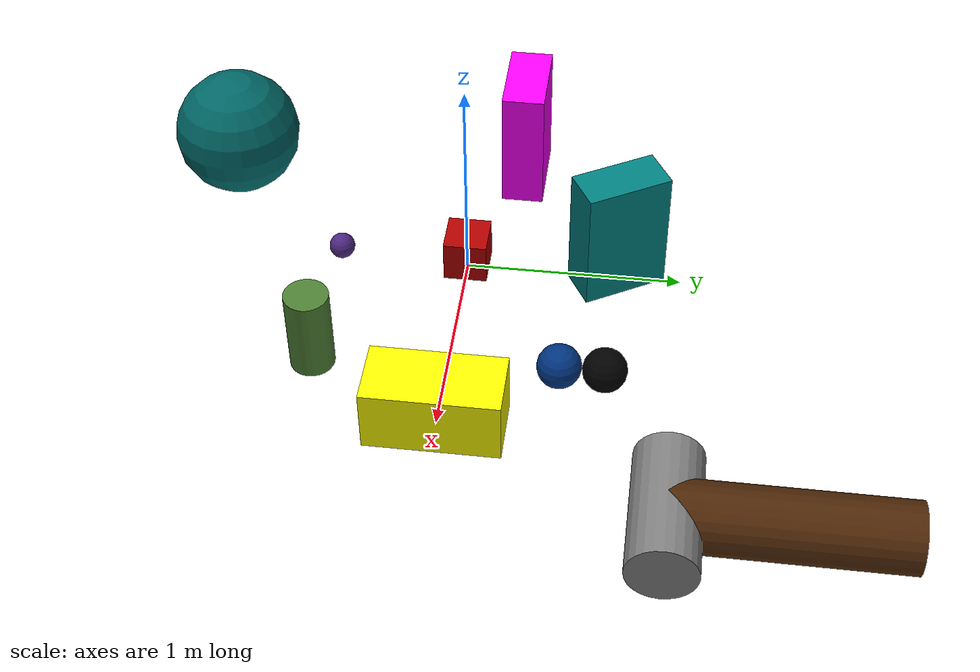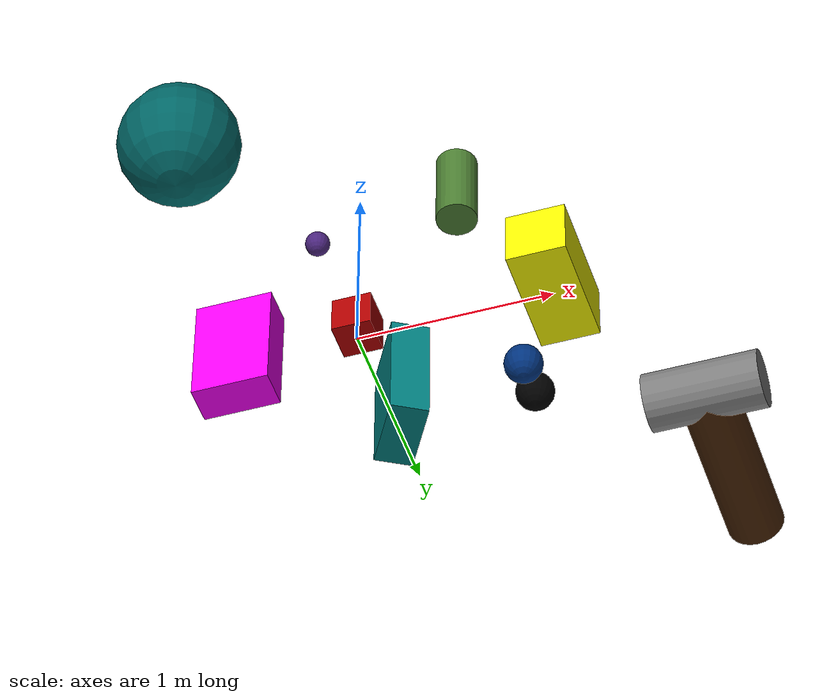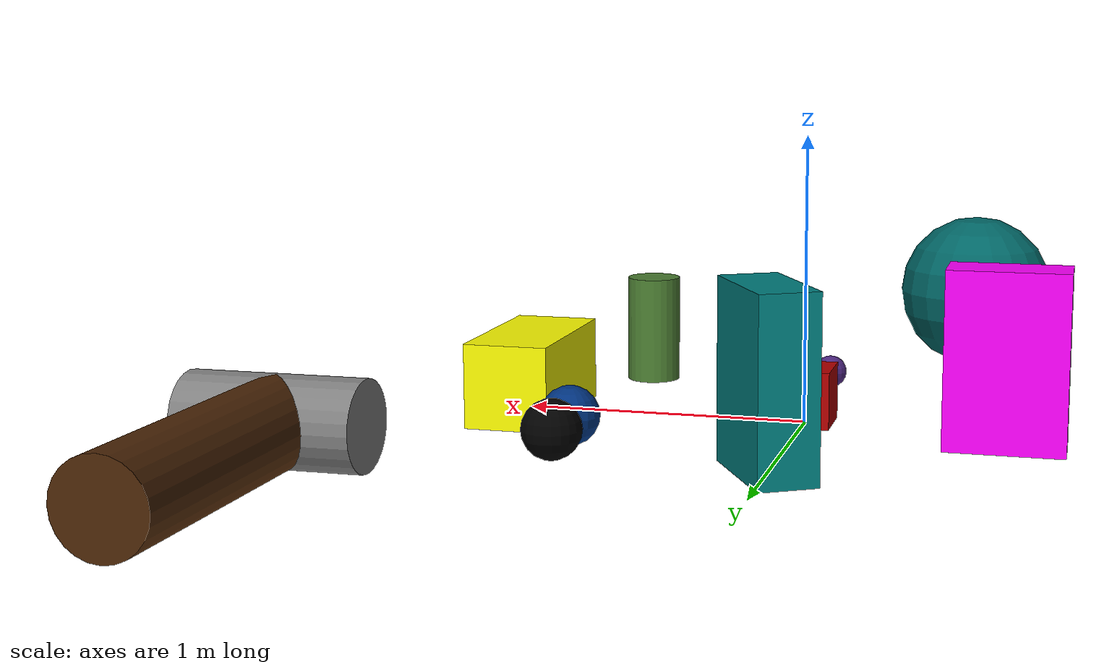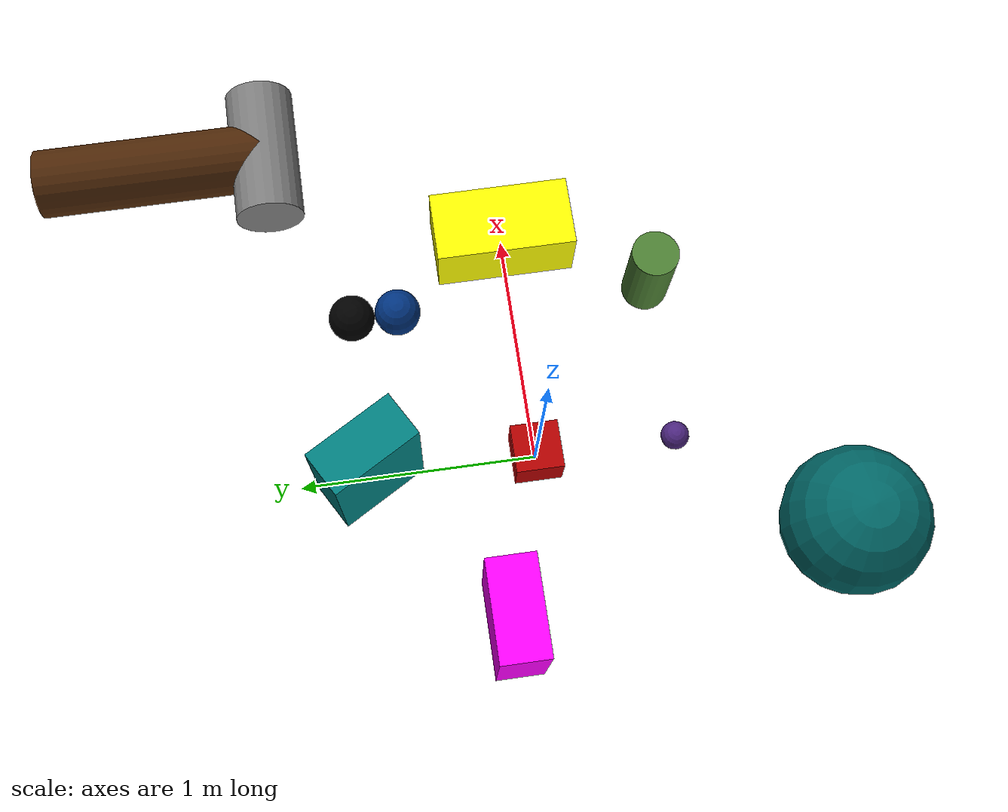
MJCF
<mujoco>

    <worldbody>
        <body name="red_box" pos="0 0 0.1" euler="0 0 0">
            <joint type = "free"/>
            <geom type="box" size=".1 .1 .1" rgba="0.7 0 0 1"/>
        </body>

        <body name="blue_ball" pos="0.7 0.5 0.1" euler="0 0 0">
            <joint type = "free"/>
            <geom type="sphere" size=".1" rgba="0 0.2 0.5 1"/>
            <geom type="sphere" size=".1" rgba="0 0 0 1" pos="0 .2 0"/>
        </body>

        <body name="pink_box" pos="-0.7 0.2 .3" euler="0 0 90">
            <joint type = "free"/>
            <geom type="box" size=".1 .2 .3" rgba="1 0 1 1"/>
        </body>

        <body name="big_ball" pos="-0.5 -1.2 .3" euler="0 0 0">
            <joint type = "free"/>
            <geom type="sphere" size=".3" rgba="0 .4 .4 1"/>
        </body>

        <body name="blue_box" pos="0 .7 .3" euler="0 0 30">
            <joint type = "free"/>
            <geom type="box" size=".1 .2 .3" rgba="0 .5 .5 1"/>
        </body>

        <body name="purple_ball" pos="0 -.6 .06" euler="0 0 0">
            <joint type = "free"/>
            <geom type="sphere" size=".06" rgba=".3 .15 .5 1"/>
        </body>

        <body name="cylinder" pos=".7 -.6 .2" euler="0 0 0">
            <joint type = "free"/>
            <geom type="cylinder" size=".1 .2" rgba=".3 .5 .2 1"/>
        </body>

        <body name="yellow_box" pos="1 0 0.13">
            <joint type = "free"/>
            <geom type="box" size=".15 .3 0.15" rgba="255 128 0 1"/>
        </body>

        <body name="hammer" pos="1.5 1.5 0.15" euler="90 0 0">
            <joint type = "free"/>
            <geom type="cylinder" size="0.15 0.5" rgba="0.3 0.15 0.03 1"/>
            <geom type="cylinder" size="0.15 0.3" rgba="0.5 0.5 0.5 1" pos="0 0 0.5" euler="0 90 0"/>
        </body>

    </worldbody>
</mujoco>
